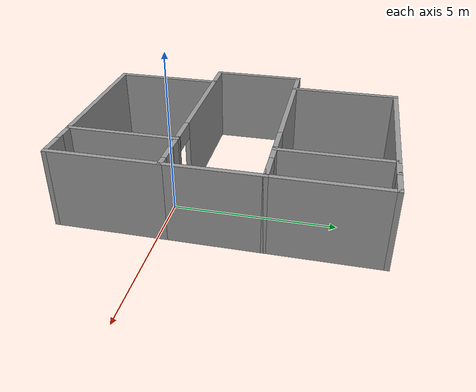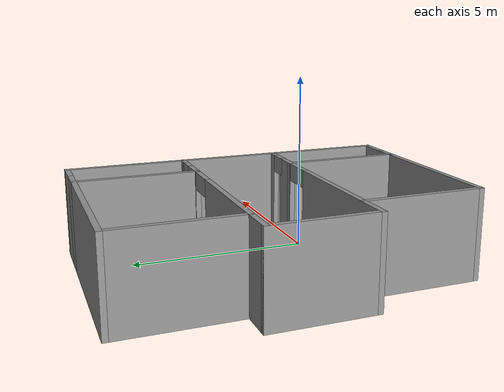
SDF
<?xml version='1.0'?>
<sdf version='1.7'>
  <model name='world_layout'>
    <pose>-1.80706 1.64898 0 0 -0 0</pose>
    <link name='Wall_11'>
      <collision name='Wall_11_Collision'>
        <geometry>
          <box>
            <size>0.75 0.15 2.5</size>
          </box>
        </geometry>
        <pose>0 0 1.25 0 -0 0</pose>
      </collision>
      <visual name='Wall_11_Visual'>
        <pose>0 0 1.25 0 -0 0</pose>
        <geometry>
          <box>
            <size>0.75 0.15 2.5</size>
          </box>
        </geometry>
        <material>
          <script>
            <uri>file://media/materials/scripts/gazebo.material</uri>
            <name>Gazebo/Grey</name>
          </script>
          <ambient>1 1 1 1</ambient>
        </material>
        <meta>
          <layer>0</layer>
        </meta>
      </visual>
      <pose>2.2 -4.775 0 0 -0 3.14159</pose>
    </link>
    <link name='Wall_14'>
      <collision name='Wall_14_Collision'>
        <geometry>
          <box>
            <size>3.5 0.15 2.5</size>
          </box>
        </geometry>
        <pose>0 0 1.25 0 -0 0</pose>
      </collision>
      <visual name='Wall_14_Visual'>
        <pose>0 0 1.25 0 -0 0</pose>
        <geometry>
          <box>
            <size>3.5 0.15 2.5</size>
          </box>
        </geometry>
        <material>
          <script>
            <uri>file://media/materials/scripts/gazebo.material</uri>
            <name>Gazebo/Grey</name>
          </script>
          <ambient>1 1 1 1</ambient>
        </material>
        <meta>
          <layer>0</layer>
        </meta>
      </visual>
      <pose>1.9 -3.1 0 0 -0 1.5708</pose>
    </link>
    <link name='Wall_16'>
      <collision name='Wall_16_Collision'>
        <geometry>
          <box>
            <size>4.5 0.15 2.5</size>
          </box>
        </geometry>
        <pose>0 0 1.25 0 -0 0</pose>
      </collision>
      <visual name='Wall_16_Visual'>
        <pose>0 0 1.25 0 -0 0</pose>
        <geometry>
          <box>
            <size>4.5 0.15 2.5</size>
          </box>
        </geometry>
        <material>
          <script>
            <uri>file://media/materials/scripts/gazebo.material</uri>
            <name>Gazebo/Grey</name>
          </script>
          <ambient>1 1 1 1</ambient>
        </material>
        <meta>
          <layer>0</layer>
        </meta>
      </visual>
      <pose>-0.275 -4.775 0 0 -0 3.14159</pose>
    </link>
    <link name='Wall_17'>
      <collision name='Wall_17_Collision'>
        <geometry>
          <box>
            <size>3.5 0.15 2.5</size>
          </box>
        </geometry>
        <pose>0 0 1.25 0 -0 0</pose>
      </collision>
      <visual name='Wall_17_Visual'>
        <pose>0 0 1.25 0 -0 0</pose>
        <geometry>
          <box>
            <size>3.5 0.15 2.5</size>
          </box>
        </geometry>
        <material>
          <script>
            <uri>file://media/materials/scripts/gazebo.material</uri>
            <name>Gazebo/Grey</name>
          </script>
          <ambient>1 1 1 1</ambient>
        </material>
        <meta>
          <layer>0</layer>
        </meta>
      </visual>
      <pose>-2.45 -3.1 0 0 -0 1.5708</pose>
    </link>
    <link name='Wall_2'>
      <pose>-0.425 1.425 0 0 -0 0</pose>
      <visual name='Wall_2_Visual_0'>
        <pose>-0.846137 0 1.25 0 -0 0</pose>
        <geometry>
          <box>
            <size>4.30773 0.15 2.5</size>
          </box>
        </geometry>
        <material>
          <script>
            <uri>file://media/materials/scripts/gazebo.material</uri>
            <name>Gazebo/Grey</name>
          </script>
          <ambient>1 1 1 1</ambient>
        </material>
        <meta>
          <layer>0</layer>
        </meta>
      </visual>
      <collision name='Wall_2_Collision_0'>
        <geometry>
          <box>
            <size>4.30773 0.15 2.5</size>
          </box>
        </geometry>
        <pose>-0.846137 0 1.25 0 -0 0</pose>
      </collision>
      <visual name='Wall_2_Visual_1'>
        <pose>2.60386 0 1.25 0 -0 0</pose>
        <geometry>
          <box>
            <size>0.792274 0.15 2.5</size>
          </box>
        </geometry>
        <material>
          <script>
            <uri>file://media/materials/scripts/gazebo.material</uri>
            <name>Gazebo/Grey</name>
          </script>
          <ambient>1 1 1 1</ambient>
        </material>
        <meta>
          <layer>0</layer>
        </meta>
      </visual>
      <collision name='Wall_2_Collision_1'>
        <geometry>
          <box>
            <size>0.792274 0.15 2.5</size>
          </box>
        </geometry>
        <pose>2.60386 0 1.25 0 -0 0</pose>
      </collision>
      <visual name='Wall_2_Visual_2'>
        <pose>1.75773 0 2.25 0 -0 0</pose>
        <geometry>
          <box>
            <size>0.9 0.15 0.5</size>
          </box>
        </geometry>
        <material>
          <script>
            <uri>file://media/materials/scripts/gazebo.material</uri>
            <name>Gazebo/Grey</name>
          </script>
          <ambient>1 1 1 1</ambient>
        </material>
        <meta>
          <layer>0</layer>
        </meta>
      </visual>
      <collision name='Wall_2_Collision_2'>
        <geometry>
          <box>
            <size>0.9 0.15 0.5</size>
          </box>
        </geometry>
        <pose>1.75773 0 2.25 0 -0 0</pose>
      </collision>
    </link>
    <link name='Wall_23'>
      <collision name='Wall_23_Collision'>
        <geometry>
          <box>
            <size>0.75 0.15 2.5</size>
          </box>
        </geometry>
        <pose>0 0 1.25 0 -0 0</pose>
      </collision>
      <visual name='Wall_23_Visual'>
        <pose>0 0 1.25 0 -0 0</pose>
        <geometry>
          <box>
            <size>0.75 0.15 2.5</size>
          </box>
        </geometry>
        <material>
          <script>
            <uri>file://media/materials/scripts/gazebo.material</uri>
            <name>Gazebo/Grey</name>
          </script>
          <ambient>1 1 1 1</ambient>
        </material>
        <meta>
          <layer>0</layer>
        </meta>
      </visual>
      <pose>2.2 4.775 0 0 -0 3.14159</pose>
    </link>
    <link name='Wall_24'>
      <collision name='Wall_24_Collision'>
        <geometry>
          <box>
            <size>3.5 0.15 2.5</size>
          </box>
        </geometry>
        <pose>0 0 1.25 0 -0 0</pose>
      </collision>
      <visual name='Wall_24_Visual'>
        <pose>0 0 1.25 0 -0 0</pose>
        <geometry>
          <box>
            <size>3.5 0.15 2.5</size>
          </box>
        </geometry>
        <material>
          <script>
            <uri>file://media/materials/scripts/gazebo.material</uri>
            <name>Gazebo/Grey</name>
          </script>
          <ambient>1 1 1 1</ambient>
        </material>
        <meta>
          <layer>0</layer>
        </meta>
      </visual>
      <pose>1.9 3.1 0 0 -0 -1.5708</pose>
    </link>
    <link name='Wall_26'>
      <collision name='Wall_26_Collision'>
        <geometry>
          <box>
            <size>4.5 0.15 2.5</size>
          </box>
        </geometry>
        <pose>0 0 1.25 0 -0 0</pose>
      </collision>
      <visual name='Wall_26_Visual'>
        <pose>0 0 1.25 0 -0 0</pose>
        <geometry>
          <box>
            <size>4.5 0.15 2.5</size>
          </box>
        </geometry>
        <material>
          <script>
            <uri>file://media/materials/scripts/gazebo.material</uri>
            <name>Gazebo/Grey</name>
          </script>
          <ambient>1 1 1 1</ambient>
        </material>
        <meta>
          <layer>0</layer>
        </meta>
      </visual>
      <pose>-0.275 4.775 0 0 -0 3.14159</pose>
    </link>
    <link name='Wall_27'>
      <collision name='Wall_27_Collision'>
        <geometry>
          <box>
            <size>3.5 0.15 2.5</size>
          </box>
        </geometry>
        <pose>0 0 1.25 0 -0 0</pose>
      </collision>
      <visual name='Wall_27_Visual'>
        <pose>0 0 1.25 0 -0 0</pose>
        <geometry>
          <box>
            <size>3.5 0.15 2.5</size>
          </box>
        </geometry>
        <material>
          <script>
            <uri>file://media/materials/scripts/gazebo.material</uri>
            <name>Gazebo/Grey</name>
          </script>
          <ambient>1 1 1 1</ambient>
        </material>
        <meta>
          <layer>0</layer>
        </meta>
      </visual>
      <pose>-2.45 3.1 0 0 -0 -1.5708</pose>
    </link>
    <link name='Wall_29'>
      <pose>2.925 1.425 0 0 -0 0</pose>
      <visual name='Wall_29_Visual_0'>
        <pose>0 0 1.25 0 -0 0</pose>
        <geometry>
          <box>
            <size>1 0.15 2.5</size>
          </box>
        </geometry>
        <material>
          <script>
            <uri>file://media/materials/scripts/gazebo.material</uri>
            <name>Gazebo/Grey</name>
          </script>
          <ambient>1 1 1 1</ambient>
        </material>
        <meta>
          <layer>0</layer>
        </meta>
      </visual>
      <collision name='Wall_29_Collision_0'>
        <geometry>
          <box>
            <size>1 0.15 2.5</size>
          </box>
        </geometry>
        <pose>0 0 1.25 0 -0 0</pose>
      </collision>
      <visual name='Wall_29_Visual_1'>
        <pose>0.303116 0 1.25 0 -0 0</pose>
        <geometry>
          <box>
            <size>0.393769 0.15 2.5</size>
          </box>
        </geometry>
        <material>
          <script>
            <uri>file://media/materials/scripts/gazebo.material</uri>
            <name>Gazebo/Grey</name>
          </script>
          <ambient>1 1 1 1</ambient>
        </material>
        <meta>
          <layer>0</layer>
        </meta>
      </visual>
      <collision name='Wall_29_Collision_1'>
        <geometry>
          <box>
            <size>0.393769 0.15 2.5</size>
          </box>
        </geometry>
        <pose>0.303116 0 1.25 0 -0 0</pose>
      </collision>
    </link>
    <link name='Wall_30'>
      <collision name='Wall_30_Collision'>
        <geometry>
          <box>
            <size>3 0.15 2.5</size>
          </box>
        </geometry>
        <pose>0 0 1.25 0 -0 0</pose>
      </collision>
      <visual name='Wall_30_Visual'>
        <pose>0 0 1.25 0 -0 0</pose>
        <geometry>
          <box>
            <size>3 0.15 2.5</size>
          </box>
        </geometry>
        <material>
          <script>
            <uri>file://media/materials/scripts/gazebo.material</uri>
            <name>Gazebo/Grey</name>
          </script>
          <ambient>1 1 1 1</ambient>
        </material>
        <meta>
          <layer>0</layer>
        </meta>
      </visual>
      <pose>3.35 -0 0 0 -0 -1.5708</pose>
    </link>
    <link name='Wall_31'>
      <pose>2.925 -1.425 0 0 -0 3.14159</pose>
      <visual name='Wall_31_Visual_0'>
        <pose>-0.303116 0 1.25 0 -0 0</pose>
        <geometry>
          <box>
            <size>0.393769 0.15 2.5</size>
          </box>
        </geometry>
        <material>
          <script>
            <uri>file://media/materials/scripts/gazebo.material</uri>
            <name>Gazebo/Grey</name>
          </script>
          <ambient>1 1 1 1</ambient>
        </material>
        <meta>
          <layer>0</layer>
        </meta>
      </visual>
      <collision name='Wall_31_Collision_0'>
        <geometry>
          <box>
            <size>0.393769 0.15 2.5</size>
          </box>
        </geometry>
        <pose>-0.303116 0 1.25 0 -0 0</pose>
      </collision>
      <visual name='Wall_31_Visual_1'>
        <pose>0.196884 0 2.25 0 -0 0</pose>
        <geometry>
          <box>
            <size>0.606231 0.15 0.5</size>
          </box>
        </geometry>
        <material>
          <script>
            <uri>file://media/materials/scripts/gazebo.material</uri>
            <name>Gazebo/Grey</name>
          </script>
          <ambient>1 1 1 1</ambient>
        </material>
        <meta>
          <layer>0</layer>
        </meta>
      </visual>
      <collision name='Wall_31_Collision_1'>
        <geometry>
          <box>
            <size>0.606231 0.15 0.5</size>
          </box>
        </geometry>
        <pose>0.196884 0 2.25 0 -0 0</pose>
      </collision>
    </link>
    <link name='Wall_35'>
      <collision name='Wall_35_Collision'>
        <geometry>
          <box>
            <size>3.5 0.15 2.5</size>
          </box>
        </geometry>
        <pose>0 0 1.25 0 -0 0</pose>
      </collision>
      <visual name='Wall_35_Visual'>
        <pose>0 0 1.25 0 -0 0</pose>
        <geometry>
          <box>
            <size>3.5 0.15 2.5</size>
          </box>
        </geometry>
        <material>
          <script>
            <uri>file://media/materials/scripts/gazebo.material</uri>
            <name>Gazebo/Grey</name>
          </script>
          <ambient>1 1 1 1</ambient>
        </material>
        <meta>
          <layer>0</layer>
        </meta>
      </visual>
      <pose>3.35 -3.1 0 0 -0 -1.5708</pose>
    </link>
    <link name='Wall_36'>
      <collision name='Wall_36_Collision'>
        <geometry>
          <box>
            <size>1 0.15 2.5</size>
          </box>
        </geometry>
        <pose>0 0 1.25 0 -0 0</pose>
      </collision>
      <visual name='Wall_36_Visual'>
        <pose>0 0 1.25 0 -0 0</pose>
        <geometry>
          <box>
            <size>1 0.15 2.5</size>
          </box>
        </geometry>
        <material>
          <script>
            <uri>file://media/materials/scripts/gazebo.material</uri>
            <name>Gazebo/Grey</name>
          </script>
          <ambient>1 1 1 1</ambient>
        </material>
        <meta>
          <layer>0</layer>
        </meta>
      </visual>
      <pose>2.925 -4.775 0 0 -0 3.14159</pose>
    </link>
    <link name='Wall_38'>
      <collision name='Wall_38_Collision'>
        <geometry>
          <box>
            <size>3.5 0.15 2.5</size>
          </box>
        </geometry>
        <pose>0 0 1.25 0 -0 0</pose>
      </collision>
      <visual name='Wall_38_Visual'>
        <pose>0 0 1.25 0 -0 0</pose>
        <geometry>
          <box>
            <size>3.5 0.15 2.5</size>
          </box>
        </geometry>
        <material>
          <script>
            <uri>file://media/materials/scripts/gazebo.material</uri>
            <name>Gazebo/Grey</name>
          </script>
          <ambient>1 1 1 1</ambient>
        </material>
        <meta>
          <layer>0</layer>
        </meta>
      </visual>
      <pose>3.35 3.1 0 0 -0 1.5708</pose>
    </link>
    <link name='Wall_39'>
      <collision name='Wall_39_Collision'>
        <geometry>
          <box>
            <size>1 0.15 2.5</size>
          </box>
        </geometry>
        <pose>0 0 1.25 0 -0 0</pose>
      </collision>
      <visual name='Wall_39_Visual'>
        <pose>0 0 1.25 0 -0 0</pose>
        <geometry>
          <box>
            <size>1 0.15 2.5</size>
          </box>
        </geometry>
        <material>
          <script>
            <uri>file://media/materials/scripts/gazebo.material</uri>
            <name>Gazebo/Grey</name>
          </script>
          <ambient>1 1 1 1</ambient>
        </material>
        <meta>
          <layer>0</layer>
        </meta>
      </visual>
      <pose>2.925 4.775 0 0 -0 3.14159</pose>
    </link>
    <link name='Wall_4'>
      <pose>-0.425 -1.425 0 0 -0 3.14159</pose>
      <visual name='Wall_4_Visual_0'>
        <pose>-2.60365 0 1.25 0 -0 0</pose>
        <geometry>
          <box>
            <size>0.792689 0.15 2.5</size>
          </box>
        </geometry>
        <material>
          <script>
            <uri>file://media/materials/scripts/gazebo.material</uri>
            <name>Gazebo/Grey</name>
          </script>
          <ambient>1 1 1 1</ambient>
        </material>
        <meta>
          <layer>0</layer>
        </meta>
      </visual>
      <collision name='Wall_4_Collision_0'>
        <geometry>
          <box>
            <size>0.792689 0.15 2.5</size>
          </box>
        </geometry>
        <pose>-2.60365 0 1.25 0 -0 0</pose>
      </collision>
      <visual name='Wall_4_Visual_1'>
        <pose>0.846345 0 1.25 0 -0 0</pose>
        <geometry>
          <box>
            <size>4.30731 0.15 2.5</size>
          </box>
        </geometry>
        <material>
          <script>
            <uri>file://media/materials/scripts/gazebo.material</uri>
            <name>Gazebo/Grey</name>
          </script>
          <ambient>1 1 1 1</ambient>
        </material>
        <meta>
          <layer>0</layer>
        </meta>
      </visual>
      <collision name='Wall_4_Collision_1'>
        <geometry>
          <box>
            <size>4.30731 0.15 2.5</size>
          </box>
        </geometry>
        <pose>0.846345 0 1.25 0 -0 0</pose>
      </collision>
      <visual name='Wall_4_Visual_2'>
        <pose>-1.75731 0 2.25 0 -0 0</pose>
        <geometry>
          <box>
            <size>0.9 0.15 0.5</size>
          </box>
        </geometry>
        <material>
          <script>
            <uri>file://media/materials/scripts/gazebo.material</uri>
            <name>Gazebo/Grey</name>
          </script>
          <ambient>1 1 1 1</ambient>
        </material>
        <meta>
          <layer>0</layer>
        </meta>
      </visual>
      <collision name='Wall_4_Collision_2'>
        <geometry>
          <box>
            <size>0.9 0.15 0.5</size>
          </box>
        </geometry>
        <pose>-1.75731 0 2.25 0 -0 0</pose>
      </collision>
    </link>
    <link name='Wall_5'>
      <collision name='Wall_5_Collision'>
        <geometry>
          <box>
            <size>3 0.15 2.5</size>
          </box>
        </geometry>
        <pose>0 0 1.25 0 -0 0</pose>
      </collision>
      <visual name='Wall_5_Visual'>
        <pose>0 0 1.25 0 -0 0</pose>
        <geometry>
          <box>
            <size>3 0.15 2.5</size>
          </box>
        </geometry>
        <material>
          <script>
            <uri>file://media/materials/scripts/gazebo.material</uri>
            <name>Gazebo/Grey</name>
          </script>
          <ambient>1 1 1 1</ambient>
        </material>
        <meta>
          <layer>0</layer>
        </meta>
      </visual>
      <pose>-3.35 -0 0 0 -0 1.5708</pose>
    </link>
    <static>1</static>
  </model>
</sdf>
